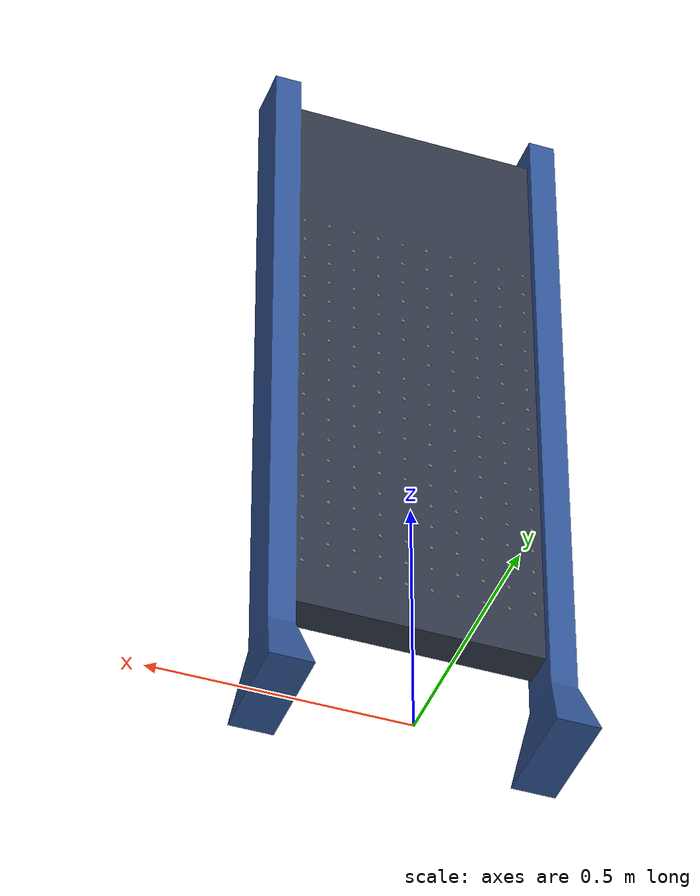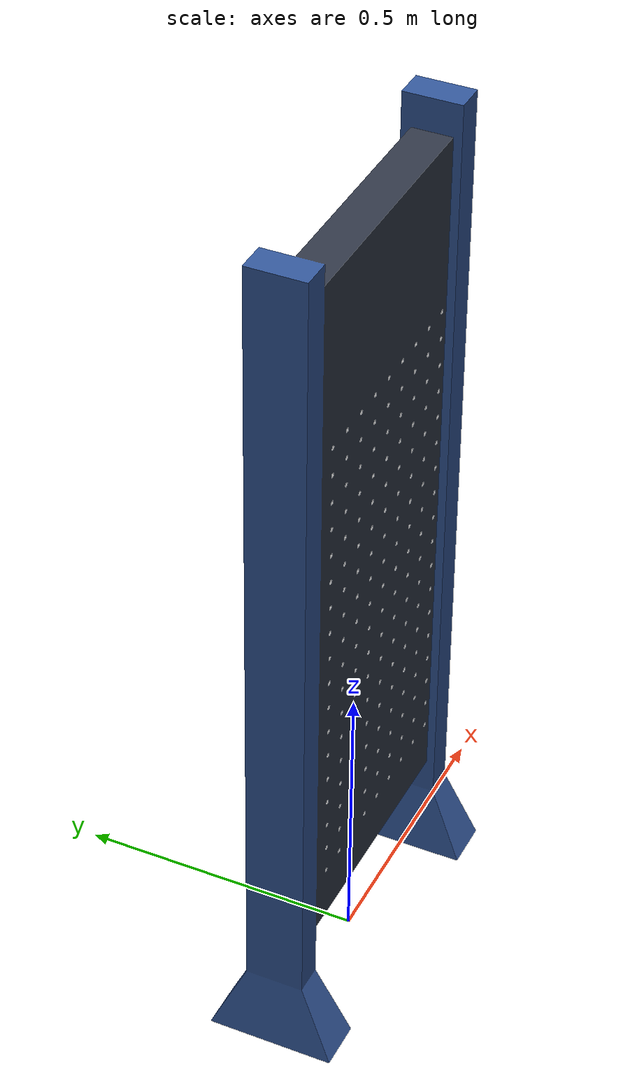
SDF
<sdf version='1.4'>
	<model name="Equiplet">
		<plugin name="hello_world2" filename="/home/t/git/HUniversal-Production-Utrecht/src/REXOS/ROS/rexos_gazebo/libhello_world.so"/>
		<static>false</static>
		<link name='link'>
			<pose>0 0 0 0 0 0</pose>
			<gravity>false</gravity>

			<inertial>
				<mass>80000</mass>
			</inertial>
			<visual name="visual">
				<geometry>
					<mesh>
						<uri>model://equiplet/equiplet complex.dae</uri>
					</mesh>
				</geometry>
			</visual>
		</link>
		<joint type="prismatic" name="linkToWorld">
			<pose>0 0 0 0 0 0</pose>
			<child>link</child>
			<parent>world</parent>
			<axis>
				<xyz>1 0 0</xyz>
				<limit>
					<upper>0.0</upper>
					<lower>0.0</lower>
				</limit>
			</axis>
		</joint>
	</model>
</sdf>
